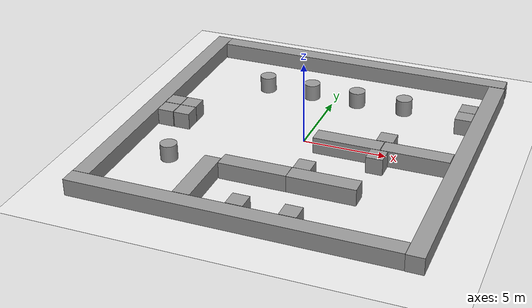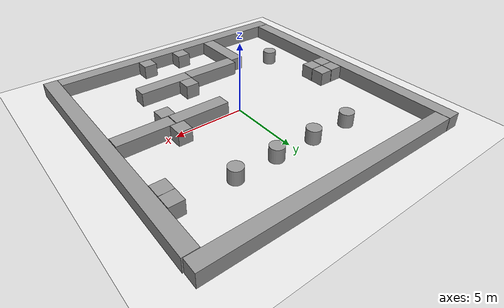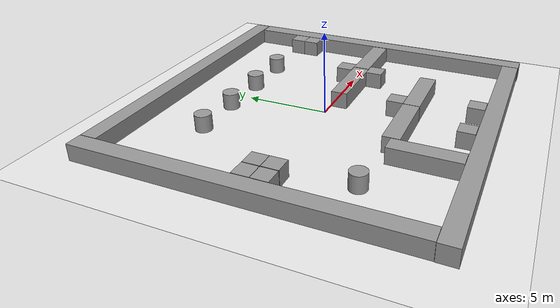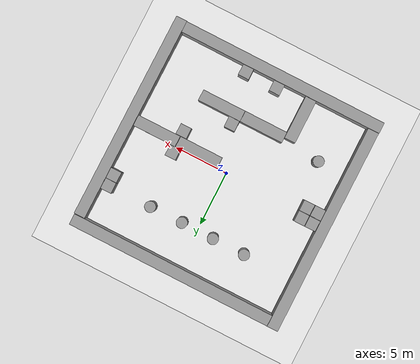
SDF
<sdf version="1.6">
 <world name="default">
  <light name="sun" type="directional">
   <pose>0 0 10 0 -0 0</pose>
   <diffuse>0.8 0.8 0.8 1</diffuse>
   <specular>0.1 0.1 0.1 1</specular>
   <attenuation>
    <range>1000</range>
    <constant>0.9</constant>
    <linear>0.01</linear>
    <quadratic>0.001</quadratic>
   </attenuation>
   <direction>-0.5 0.5 -1</direction>
  </light>
  <model name="ground_plane">
   <static>1</static>
   <link name="link">
    <collision name="collision">
     <geometry><plane><normal>0 0 1</normal><size>100 100</size></plane></geometry>
     <surface><friction><ode><mu>100</mu><mu2>50</mu2></ode></friction></surface>
    </collision>
    <visual name="visual">
     <cast_shadows>0</cast_shadows>
     <geometry><plane><normal>0 0 1</normal><size>100 100</size></plane></geometry>
     <material>
      <script><uri>file://media/materials/scripts/gazebo.material</uri><name>Gazebo/White</name></script>
     </material>
    </visual>
   </link>
  </model>
  <gravity>0 0 -9.8</gravity>
  <magnetic_field>6e-06 2.3e-05 -4.2e-05</magnetic_field>
  <atmosphere type="adiabatic"/>
  <physics name="default_physics" default="0" type="ode">
   <max_step_size>0.001</max_step_size>
   <real_time_factor>1</real_time_factor>
   <real_time_update_rate>1000</real_time_update_rate>
  </physics>
  <scene><ambient>0.4 0.4 0.4 1</ambient><background>0.7 0.7 0.7 1</background><shadows>1</shadows></scene>
  <spherical_coordinates>
   <surface_model>EARTH_WGS84</surface_model>
   <latitude_deg>0</latitude_deg>
   <longitude_deg>0</longitude_deg>
   <elevation>0</elevation>
   <heading_deg>0</heading_deg>
  </spherical_coordinates>
  <model name="unit_box_0">
   <pose>-0.538474 -9.50801 0.498941 3e-06 0.000112 -0.001873</pose>
   <link name="link">
    <inertial>
     <mass>1</mass>
     <inertia><ixx>4</ixx><ixy>0</ixy><ixz>0</ixz><iyy>4</iyy><iyz>0</iyz><izz>4</izz></inertia>
    </inertial>
    <collision name="collision"><geometry><box><size>19 1 1</size></box></geometry></collision>
    <visual name="visual">
     <geometry><box><size>19 1 1</size></box></geometry>
     <material>
      <script><name>Gazebo/Grey</name><uri>file://media/materials/scripts/gazebo.material</uri></script>
     </material>
    </visual>
   </link>
  </model>
  <model name="unit_box_0_clone_0">
   <pose>9.5147 -0.553076 0.498941 3e-06 0.000112 1.56571</pose>
   <link name="link">
    <inertial>
     <mass>1</mass>
     <inertia><ixx>4</ixx><ixy>0</ixy><ixz>0</ixz><iyy>4</iyy><iyz>0</iyz><izz>4</izz></inertia>
    </inertial>
    <collision name="collision"><geometry><box><size>19 1 1</size></box></geometry></collision>
    <visual name="visual">
     <geometry><box><size>19 1 1</size></box></geometry>
     <material>
      <script><name>Gazebo/Grey</name><uri>file://media/materials/scripts/gazebo.material</uri></script>
     </material>
    </visual>
   </link>
  </model>
  <model name="unit_box_0_clone_0_clone">
   <pose>-9.51892 0.523167 0.498941 -3e-06 -0.000112 1.57125</pose>
   <link name="link">
    <inertial>
     <mass>1</mass>
     <inertia><ixx>4</ixx><ixy>0</ixy><ixz>0</ixz><iyy>4</iyy><iyz>0</iyz><izz>4</izz></inertia>
    </inertial>
    <collision name="collision"><geometry><box><size>19 1 1</size></box></geometry></collision>
    <visual name="visual">
     <geometry><box><size>19 1 1</size></box></geometry>
     <material>
      <script><name>Gazebo/Grey</name><uri>file://media/materials/scripts/gazebo.material</uri></script>
     </material>
    </visual>
   </link>
  </model>
  <model name="unit_box_0_clone">
   <pose>0.496351 9.49724 0.5 -1e-06 -0 -0.002044</pose>
   <link name="link">
    <inertial>
     <mass>1</mass>
     <inertia><ixx>4</ixx><ixy>0</ixy><ixz>0</ixz><iyy>4</iyy><iyz>0</iyz><izz>4</izz></inertia>
    </inertial>
    <collision name="collision"><geometry><box><size>19 1 1</size></box></geometry></collision>
    <visual name="visual">
     <geometry><box><size>19 1 1</size></box></geometry>
     <material>
      <script><name>Gazebo/Grey</name><uri>file://media/materials/scripts/gazebo.material</uri></script>
     </material>
    </visual>
   </link>
  </model>
  <model name="unit_box_1">
   <pose>6.97559 -0.524621 0.5 0 -0 0</pose>
   <link name="link">
    <inertial>
     <mass>1</mass>
     <inertia><ixx>1</ixx><ixy>0</ixy><ixz>0</ixz><iyy>1</iyy><iyz>0</iyz><izz>1</izz></inertia>
    </inertial>
    <collision name="collision"><geometry><box><size>4 1 1</size></box></geometry></collision>
    <visual name="visual">
     <geometry><box><size>4 1 1</size></box></geometry>
     <material>
      <script><name>Gazebo/Grey</name><uri>file://media/materials/scripts/gazebo.material</uri></script>
     </material>
    </visual>
   </link>
  </model>
  <model name="unit_box_1_clone">
   <pose>2.93811 -0.538974 0.5 0 -0 0</pose>
   <link name="link">
    <inertial>
     <mass>1</mass>
     <inertia><ixx>1</ixx><ixy>0</ixy><ixz>0</ixz><iyy>1</iyy><iyz>0</iyz><izz>1</izz></inertia>
    </inertial>
    <collision name="collision"><geometry><box><size>4 1 1</size></box></geometry></collision>
    <visual name="visual">
     <geometry><box><size>4 1 1</size></box></geometry>
     <material>
      <script><name>Gazebo/Grey</name><uri>file://media/materials/scripts/gazebo.material</uri></script>
     </material>
    </visual>
   </link>
  </model>
  <model name="unit_box_1_clone_0">
   <pose>3.02526 -4.98313 0.5 0 -0 0</pose>
   <link name="link">
    <inertial>
     <mass>1</mass>
     <inertia><ixx>1</ixx><ixy>0</ixy><ixz>0</ixz><iyy>1</iyy><iyz>0</iyz><izz>1</izz></inertia>
    </inertial>
    <collision name="collision"><geometry><box><size>4 1 1</size></box></geometry></collision>
    <visual name="visual">
     <geometry><box><size>4 1 1</size></box></geometry>
     <material>
      <script><name>Gazebo/Grey</name><uri>file://media/materials/scripts/gazebo.material</uri></script>
     </material>
    </visual>
   </link>
  </model>
  <model name="unit_box_1_clone_0_clone">
   <pose>-0.990523 -4.98721 0.5 0 -0 0</pose>
   <link name="link">
    <inertial>
     <mass>1</mass>
     <inertia><ixx>1</ixx><ixy>0</ixy><ixz>0</ixz><iyy>1</iyy><iyz>0</iyz><izz>1</izz></inertia>
    </inertial>
    <collision name="collision"><geometry><box><size>4 1 1</size></box></geometry></collision>
    <visual name="visual">
     <geometry><box><size>4 1 1</size></box></geometry>
     <material>
      <script><name>Gazebo/Grey</name><uri>file://media/materials/scripts/gazebo.material</uri></script>
     </material>
    </visual>
   </link>
  </model>
  <model name="unit_box_1_clone_0_clone_0">
   <pose>-3.51329 -6.98228 0.5 0 -0 1.5708</pose>
   <link name="link">
    <inertial>
     <mass>1</mass>
     <inertia><ixx>1</ixx><ixy>0</ixy><ixz>0</ixz><iyy>1</iyy><iyz>0</iyz><izz>1</izz></inertia>
    </inertial>
    <collision name="collision"><geometry><box><size>4 1 1</size></box></geometry></collision>
    <visual name="visual">
     <geometry><box><size>4 1 1</size></box></geometry>
     <material>
      <script><name>Gazebo/Grey</name><uri>file://media/materials/scripts/gazebo.material</uri></script>
     </material>
    </visual>
   </link>
  </model>
  <model name="unit_cylinder_0">
   <pose>1.4902 5.48491 0.499998 3e-06 4e-06 -0</pose>
   <link name="link">
    <inertial>
     <mass>1</mass>
     <inertia><ixx>0.145833</ixx><ixy>0</ixy><ixz>0</ixz><iyy>0.145833</iyy><iyz>0</iyz><izz>0.125</izz></inertia>
    </inertial>
    <collision name="collision">
     <geometry><cylinder><radius>0.5</radius><length>1</length></cylinder></geometry>
    </collision>
    <visual name="visual">
     <geometry><cylinder><radius>0.5</radius><length>1</length></cylinder></geometry>
     <material>
      <script><name>Gazebo/Grey</name><uri>file://media/materials/scripts/gazebo.material</uri></script>
     </material>
    </visual>
   </link>
  </model>
  <model name="unit_cylinder_1">
   <pose>-1.50055 5.50384 0.499998 3e-06 4e-06 -0</pose>
   <link name="link">
    <inertial>
     <mass>1</mass>
     <inertia><ixx>0.145833</ixx><ixy>0</ixy><ixz>0</ixz><iyy>0.145833</iyy><iyz>0</iyz><izz>0.125</izz></inertia>
    </inertial>
    <collision name="collision">
     <geometry><cylinder><radius>0.5</radius><length>1</length></cylinder></geometry>
    </collision>
    <visual name="visual">
     <geometry><cylinder><radius>0.5</radius><length>1</length></cylinder></geometry>
     <material>
      <script><name>Gazebo/Grey</name><uri>file://media/materials/scripts/gazebo.material</uri></script>
     </material>
    </visual>
   </link>
  </model>
  <model name="unit_cylinder_2">
   <pose>-4.49502 5.50875 0.499998 3e-06 4e-06 -0</pose>
   <link name="link">
    <inertial>
     <mass>1</mass>
     <inertia><ixx>0.145833</ixx><ixy>0</ixy><ixz>0</ixz><iyy>0.145833</iyy><iyz>0</iyz><izz>0.125</izz></inertia>
    </inertial>
    <collision name="collision">
     <geometry><cylinder><radius>0.5</radius><length>1</length></cylinder></geometry>
    </collision>
    <visual name="visual">
     <geometry><cylinder><radius>0.5</radius><length>1</length></cylinder></geometry>
     <material>
      <script><name>Gazebo/Grey</name><uri>file://media/materials/scripts/gazebo.material</uri></script>
     </material>
    </visual>
   </link>
  </model>
  <model name="unit_box_2">
   <pose>-8.49038 0.470508 0.499995 1e-05 -0 0</pose>
   <link name="link">
    <inertial>
     <mass>1</mass>
     <inertia>
      <ixx>0.166667</ixx>
      <ixy>0</ixy>
      <ixz>0</ixz>
      <iyy>0.166667</iyy>
      <iyz>0</iyz>
      <izz>0.166667</izz>
     </inertia>
    </inertial>
    <collision name="collision"><geometry><box><size>1 1 1</size></box></geometry></collision>
    <visual name="visual">
     <geometry><box><size>1 1 1</size></box></geometry>
     <material>
      <script><name>Gazebo/Grey</name><uri>file://media/materials/scripts/gazebo.material</uri></script>
     </material>
    </visual>
   </link>
  </model>
  <model name="unit_box_3">
   <pose>-8.4916 -0.551936 0.499995 1e-05 -0 0</pose>
   <link name="link">
    <inertial>
     <mass>1</mass>
     <inertia>
      <ixx>0.166667</ixx>
      <ixy>0</ixy>
      <ixz>0</ixz>
      <iyy>0.166667</iyy>
      <iyz>0</iyz>
      <izz>0.166667</izz>
     </inertia>
    </inertial>
    <collision name="collision"><geometry><box><size>1 1 1</size></box></geometry></collision>
    <visual name="visual">
     <geometry><box><size>1 1 1</size></box></geometry>
     <material>
      <script><name>Gazebo/Grey</name><uri>file://media/materials/scripts/gazebo.material</uri></script>
     </material>
    </visual>
   </link>
  </model>
  <model name="unit_box_4">
   <pose>-7.45756 0.473015 0.499995 1e-05 -0 0</pose>
   <link name="link">
    <inertial>
     <mass>1</mass>
     <inertia>
      <ixx>0.166667</ixx>
      <ixy>0</ixy>
      <ixz>0</ixz>
      <iyy>0.166667</iyy>
      <iyz>0</iyz>
      <izz>0.166667</izz>
     </inertia>
    </inertial>
    <collision name="collision"><geometry><box><size>1 1 1</size></box></geometry></collision>
    <visual name="visual">
     <geometry><box><size>1 1 1</size></box></geometry>
     <material>
      <script><name>Gazebo/Grey</name><uri>file://media/materials/scripts/gazebo.material</uri></script>
     </material>
    </visual>
   </link>
  </model>
  <model name="unit_box_5">
   <pose>-7.45031 -0.547385 0.499995 1e-05 -0 0</pose>
   <link name="link">
    <inertial>
     <mass>1</mass>
     <inertia>
      <ixx>0.166667</ixx>
      <ixy>0</ixy>
      <ixz>0</ixz>
      <iyy>0.166667</iyy>
      <iyz>0</iyz>
      <izz>0.166667</izz>
     </inertia>
    </inertial>
    <collision name="collision"><geometry><box><size>1 1 1</size></box></geometry></collision>
    <visual name="visual">
     <geometry><box><size>1 1 1</size></box></geometry>
     <material>
      <script><name>Gazebo/Grey</name><uri>file://media/materials/scripts/gazebo.material</uri></script>
     </material>
    </visual>
   </link>
  </model>
  <model name="unit_box_6">
   <pose>4.92673 -1.55231 0.499995 0 1e-05 0</pose>
   <link name="link">
    <inertial>
     <mass>1</mass>
     <inertia>
      <ixx>0.166667</ixx>
      <ixy>0</ixy>
      <ixz>0</ixz>
      <iyy>0.166667</iyy>
      <iyz>0</iyz>
      <izz>0.166667</izz>
     </inertia>
    </inertial>
    <collision name="collision"><geometry><box><size>1 1 1</size></box></geometry></collision>
    <visual name="visual">
     <geometry><box><size>1 1 1</size></box></geometry>
     <material>
      <script><name>Gazebo/Grey</name><uri>file://media/materials/scripts/gazebo.material</uri></script>
     </material>
    </visual>
   </link>
  </model>
  <model name="unit_box_7">
   <pose>1.54492 -3.98027 0.499995 -1e-05 0 0</pose>
   <link name="link">
    <inertial>
     <mass>1</mass>
     <inertia>
      <ixx>0.166667</ixx>
      <ixy>0</ixy>
      <ixz>0</ixz>
      <iyy>0.166667</iyy>
      <iyz>0</iyz>
      <izz>0.166667</izz>
     </inertia>
    </inertial>
    <collision name="collision"><geometry><box><size>1 1 1</size></box></geometry></collision>
    <visual name="visual">
     <geometry><box><size>1 1 1</size></box></geometry>
     <material>
      <script><name>Gazebo/Grey</name><uri>file://media/materials/scripts/gazebo.material</uri></script>
     </material>
    </visual>
   </link>
  </model>
  <model name="unit_box_8">
   <pose>4.9237 0.491262 0.499995 0 1e-05 0</pose>
   <link name="link">
    <inertial>
     <mass>1</mass>
     <inertia>
      <ixx>0.166667</ixx>
      <ixy>0</ixy>
      <ixz>0</ixz>
      <iyy>0.166667</iyy>
      <iyz>0</iyz>
      <izz>0.166667</izz>
     </inertia>
    </inertial>
    <collision name="collision"><geometry><box><size>1 1 1</size></box></geometry></collision>
    <visual name="visual">
     <geometry><box><size>1 1 1</size></box></geometry>
     <material>
      <script><name>Gazebo/Grey</name><uri>file://media/materials/scripts/gazebo.material</uri></script>
     </material>
    </visual>
   </link>
  </model>
  <model name="unit_cylinder_3">
   <pose>4.5174 5.50713 0.499992 -3e-06 -4e-06 -0</pose>
   <link name="link">
    <inertial>
     <mass>1</mass>
     <inertia><ixx>0.145833</ixx><ixy>0</ixy><ixz>0</ixz><iyy>0.145833</iyy><iyz>0</iyz><izz>0.125</izz></inertia>
    </inertial>
    <collision name="collision">
     <geometry><cylinder><radius>0.5</radius><length>1</length></cylinder></geometry>
    </collision>
    <visual name="visual">
     <geometry><cylinder><radius>0.5</radius><length>1</length></cylinder></geometry>
     <material>
      <script><name>Gazebo/Grey</name><uri>file://media/materials/scripts/gazebo.material</uri></script>
     </material>
    </visual>
   </link>
  </model>
  <model name="unit_box_9">
   <pose>8.52176 5.52822 0.499995 0 1e-05 0</pose>
   <link name="link">
    <inertial>
     <mass>1</mass>
     <inertia>
      <ixx>0.166667</ixx>
      <ixy>0</ixy>
      <ixz>0</ixz>
      <iyy>0.166667</iyy>
      <iyz>0</iyz>
      <izz>0.166667</izz>
     </inertia>
    </inertial>
    <collision name="collision"><geometry><box><size>1 1 1</size></box></geometry></collision>
    <visual name="visual">
     <geometry><box><size>1 1 1</size></box></geometry>
     <material>
      <script><name>Gazebo/Grey</name><uri>file://media/materials/scripts/gazebo.material</uri></script>
     </material>
    </visual>
   </link>
  </model>
  <model name="unit_box_10">
   <pose>8.52107 4.52262 0.499995 0 1e-05 0</pose>
   <link name="link">
    <inertial>
     <mass>1</mass>
     <inertia>
      <ixx>0.166667</ixx>
      <ixy>0</ixy>
      <ixz>0</ixz>
      <iyy>0.166667</iyy>
      <iyz>0</iyz>
      <izz>0.166667</izz>
     </inertia>
    </inertial>
    <collision name="collision"><geometry><box><size>1 1 1</size></box></geometry></collision>
    <visual name="visual">
     <geometry><box><size>1 1 1</size></box></geometry>
     <material>
      <script><name>Gazebo/Grey</name><uri>file://media/materials/scripts/gazebo.material</uri></script>
     </material>
    </visual>
   </link>
  </model>
  <model name="unit_cylinder_4">
   <pose>-6.52558 -4.50329 0.499993 -3e-06 -3e-06 0</pose>
   <link name="link">
    <inertial>
     <mass>1</mass>
     <inertia><ixx>0.145833</ixx><ixy>0</ixy><ixz>0</ixz><iyy>0.145833</iyy><iyz>0</iyz><izz>0.125</izz></inertia>
    </inertial>
    <collision name="collision">
     <geometry><cylinder><radius>0.5</radius><length>1</length></cylinder></geometry>
    </collision>
    <visual name="visual">
     <geometry><cylinder><radius>0.5</radius><length>1</length></cylinder></geometry>
     <material>
      <script><name>Gazebo/Grey</name><uri>file://media/materials/scripts/gazebo.material</uri></script>
     </material>
    </visual>
   </link>
  </model>
  <model name="unit_box_11">
   <pose>2.49588 -8.49195 0.499995 0 1e-05 0</pose>
   <link name="link">
    <inertial>
     <mass>1</mass>
     <inertia>
      <ixx>0.166667</ixx>
      <ixy>0</ixy>
      <ixz>0</ixz>
      <iyy>0.166667</iyy>
      <iyz>0</iyz>
      <izz>0.166667</izz>
     </inertia>
    </inertial>
    <collision name="collision"><geometry><box><size>1 1 1</size></box></geometry></collision>
    <visual name="visual">
     <geometry><box><size>1 1 1</size></box></geometry>
     <material>
      <script><name>Gazebo/Grey</name><uri>file://media/materials/scripts/gazebo.material</uri></script>
     </material>
    </visual>
   </link>
  </model>
  <model name="unit_box_12">
   <pose>-0.475934 -8.48158 0.499995 -0 1e-05 -0.001938</pose>
   <link name="link">
    <inertial>
     <mass>1</mass>
     <inertia>
      <ixx>0.166667</ixx>
      <ixy>0</ixy>
      <ixz>0</ixz>
      <iyy>0.166667</iyy>
      <iyz>0</iyz>
      <izz>0.166667</izz>
     </inertia>
    </inertial>
    <collision name="collision"><geometry><box><size>1 1 1</size></box></geometry></collision>
    <visual name="visual">
     <geometry><box><size>1 1 1</size></box></geometry>
     <material>
      <script><name>Gazebo/Grey</name><uri>file://media/materials/scripts/gazebo.material</uri></script>
     </material>
    </visual>
   </link>
  </model>
 </world>
</sdf>
